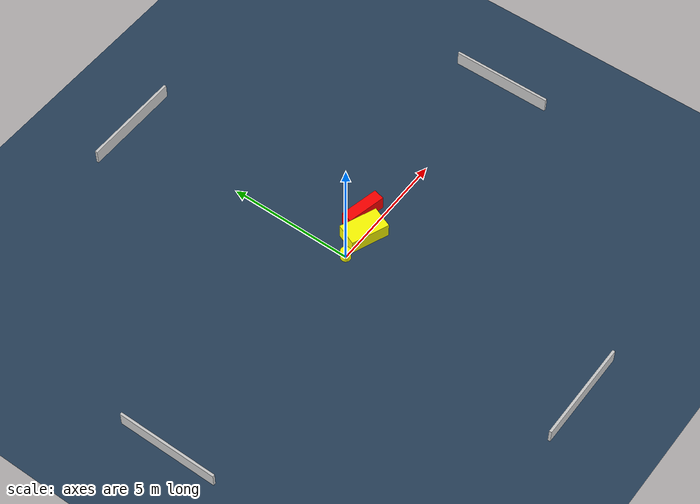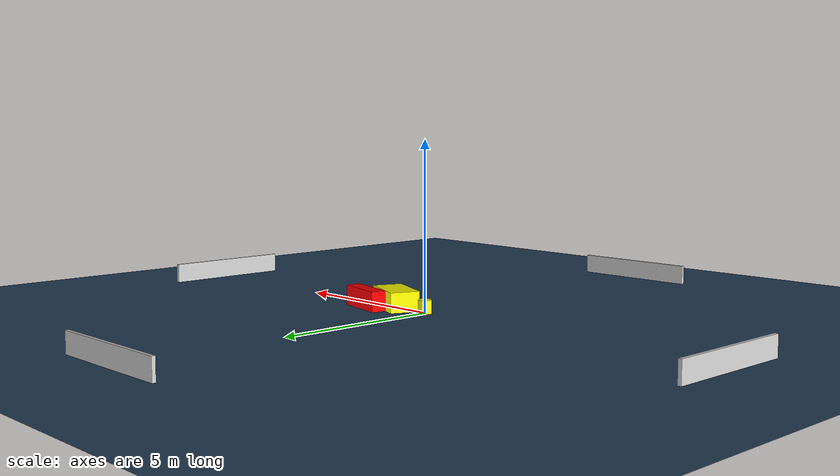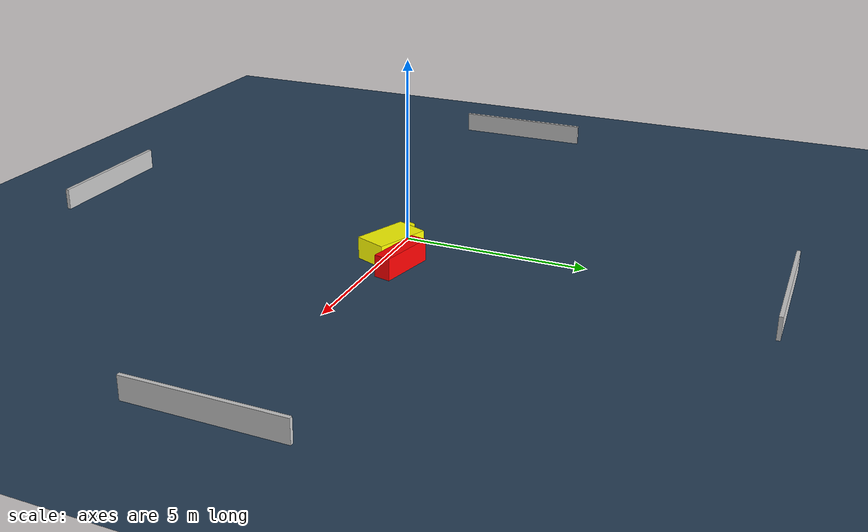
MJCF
<?xml version="1.0" ?>
<mujoco model="generated_environment">
  <option timestep="0.01" integrator="RK4" cone="elliptic"/>
  <default>
    <geom density="1"/>
  </default>
  <asset>
    <texture builtin="gradient" height="3072" name="skybox" rgb1="0.3 0.5 0.7" rgb2="0 0 0" type="skybox" width="512"/>
    <texture builtin="checker" height="300" name="groundplane" rgb1="0.2 0.3 0.4" rgb2="0.1 0.2 0.3" type="2d" width="300"/>
    <material name="groundplane" reflectance="0.2" texrepeat="5 5" texture="groundplane"/>
  </asset>
  <worldbody>
    <light dir="0 0 -1" directional="true" pos="0 0 1.5"/>
    <geom condim="3" friction="0.5 0.005 0.001" material="groundplane" name="floor" pos="0 0 0" size="0 0 0.05" type="plane"/>
    <body name="walls">
      <geom name="wall_1" condim="4" pos="-10.0 0.0 0.3" rgba="0.800000011920929 0.800000011920929 0.800000011920929 1.0" size="0.05 2.0 0.3" type="box"/>
      <geom name="wall_2" condim="4" pos="10.0 0.0 0.3" rgba="0.800000011920929 0.800000011920929 0.800000011920929 1.0" size="0.05 2.0 0.3" type="box"/>
      <geom name="wall_3" condim="4" pos="0.0 -10.0 0.3" rgba="0.800000011920929 0.800000011920929 0.800000011920929 1.0" size="2.0 0.05 0.3" type="box"/>
      <geom name="wall_4" condim="4" pos="0.0 10.0 0.3" rgba="0.800000011920929 0.800000011920929 0.800000011920929 1.0" size="2.0 0.05 0.3" type="box"/>
    </body>
    <body name="robot">
      <joint name="joint_x" type="slide" pos="0 0 0" axis="1 0 0"/>
      <joint name="joint_y" type="slide" pos="0 0 0" axis="0 1 0"/>
      <geom name="robot" type="cylinder" pos="0.0 0.0 0.2" size="0.2 0.2 0.0" mass="5.0" friction="1.0 0.005 0.0001" condim="4" rgba="1.0 1.0 0.0 1.0"/>
    </body>
    <body name="obstacle_1_movable">
      <geom name="obstacle_1_movable" condim="4" pos="1.1811863363891668 0.045200221141568235 0.3" euler="0 0 157.74547035683705" friction="0.0 0.005 0.001" rgba="1.0 1.0 0.0 1.0" size="0.769909303079948 0.4456401569341988 0.3" type="box" mass="0.1"/>
      <joint type="free"/>
    </body>
    <body name="obstacle_2_static">
      <geom name="obstacle_2_static" condim="4" pos="1.8762100020527295 0.6226735924456859 0.3" euler="0 0 257.33318946694027" friction="0.0 0.005 0.001" rgba="1.0 0.0 0.0 1.0" size="0.2235306909144231 0.7893203654346164 0.3" type="box"/>
    </body>
  </worldbody>
  <actuator>
    <motor name="actuator_x" joint="joint_x" gear="1" ctrlrange="-1 1"/>
    <motor name="actuator_y" joint="joint_y" gear="1" ctrlrange="-1 1"/>
  </actuator>
</mujoco>
